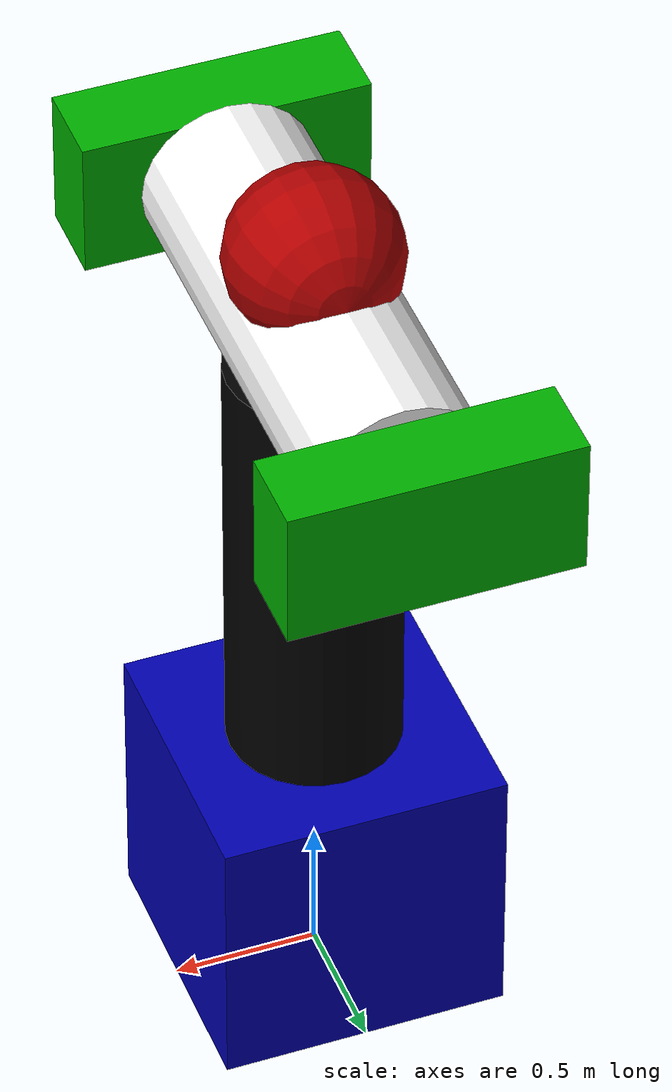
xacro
<?xml version="1.0"?>
<robot name="simple_robot" xmlns:xacro="http://www.ros.org/wiki/xacro">
    <xacro:property name="box_size" value="1.0" />
    <xacro:property name="length" value="1.6" />
    <xacro:property name="radius" value="0.3" />
    <xacro:property name="prismatic_upper" value="1.0" />
    <xacro:property name="prismatic_lower" value="-1.0" />
    <xacro:property name="prismatic_velocity" value="0.8" />
    <xacro:property name="prismatic_effort" value="3000" />
    <xacro:property name="slab_length" value="1.0" />
    <xacro:property name="slab_breath" value="0.3" />
    <xacro:property name="slab_height" value="0.5" />
    <xacro:property name="sphere_radius" value="0.3" />

    <xacro:include filename="/home/ranzant197/material_color.xacro" />

    <link name="base_link">
        <visual>
            <geometry>
                <box size="${box_size} ${box_size} ${box_size}" />
            </geometry>
            <origin xyz="0 0 0.5" rpy="0 0 0" />
            <material name="blue" />
        </visual>
    </link>

    <link name="link1">
        <visual>
            <geometry>
                <cylinder length="${length}" radius="${radius}" />
            </geometry>
            <origin rpy="0 0 0" xyz="0 0 0" />
            <material name="black" />
        </visual>
    </link>

    <link name="link2">
        <visual>
            <geometry>
                <cylinder length="${length}" radius="${radius}" />
            </geometry>
            <origin rpy="0 0 0" xyz="0 0 0" />
            <material name="white" />
        </visual>
    </link>

    <link name="link3">
        <visual>
            <geometry>
                <box size="${slab_length} ${slab_breath} ${slab_height}" />
            </geometry>
            <origin rpy="0 0 0" xyz="0 0 0" />
            <material name="green" />
        </visual>
    </link>

    <link name="link4">
        <visual>
            <geometry>
                <box size="${slab_length} ${slab_breath} ${slab_height}" />
            </geometry>
            <origin rpy="0 0 0" xyz="0 0 0" />
            <material name="green" />
        </visual>
    </link>

    <link name="link5">
        <visual>
            <geometry>
                <sphere radius="${sphere_radius}" />
            </geometry>
            <origin rpy="0 0 0" xyz="0 0 0" />
            <material name="red" />
        </visual>
    </link>

    <joint name="base_link1_joint" type="continuous">
        <parent link="base_link" />
        <child link="link1" />
        <origin rpy="0 0 0" xyz="0 0 1.8" />
        <axis xyz="0 0 1" />
    </joint>

    <joint name="link1_link2_joint" type="prismatic">
        <parent link="link1" />
        <child link="link2" />
        <origin rpy="1.57 0 0" xyz="0 0 0.95" />
        <axis xyz="0 0 1" />
        <limit upper="${prismatic_upper}" lower="${prismatic_lower}"
            velocity="${prismatic_velocity}" effort="${prismatic_effort}" />
    </joint>

    <joint name="link2_link3_joint" type="continuous">
        <parent link="link2" />
        <child link="link3" />
        <origin rpy="1.57 0 0" xyz="0 0 0.95 " />
        <axis xyz="0 1 0" />
    </joint>

    <joint name="link2_link4_joint" type="continuous">
        <parent link="link2" />
        <child link="link4" />
        <origin rpy="1.57 0 0" xyz="0 0 -0.95" />
        <axis xyz="0 1 0" />
    </joint>

    <joint name="link2_link5_joint" type="continuous">
        <parent link="link2" />
        <child link="link5" />
        <origin rpy="0 0 0" xyz="0 0.3 0" />
        <axis xyz="0 1 0" />
    </joint>
</robot>

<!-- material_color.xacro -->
<robot>
    <material name="black">
        <color rgba="0 0 0 1" />
    </material>

    <material name="blue">
        <color rgba="0 0 0.7 1" />
    </material>

    <material name="green">
        <color rgba="0 0.7 0 1" />
    </material>

    <material name="red">
        <color rgba="0.7 0 0 1" />
    </material>

    <material name="white">
        <color rgba="1 1 1 1" />
    </material>

</robot>
